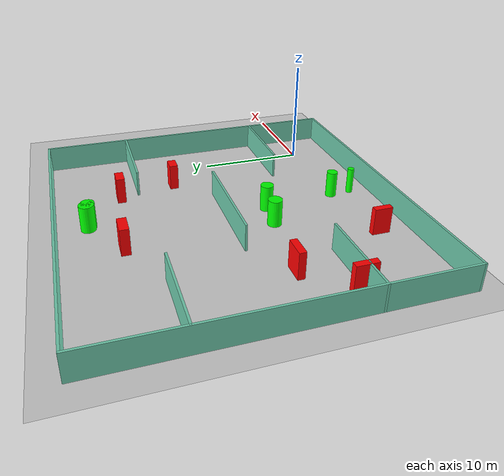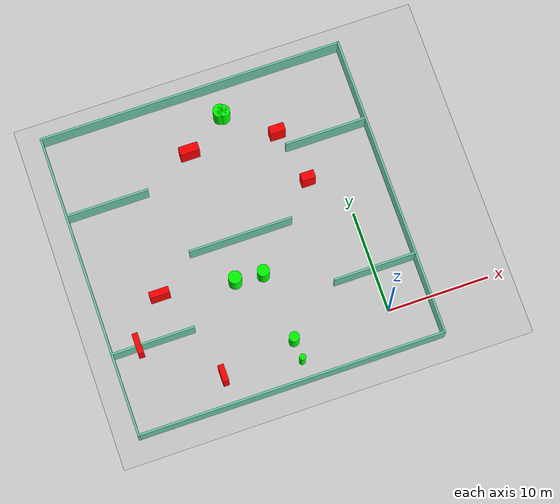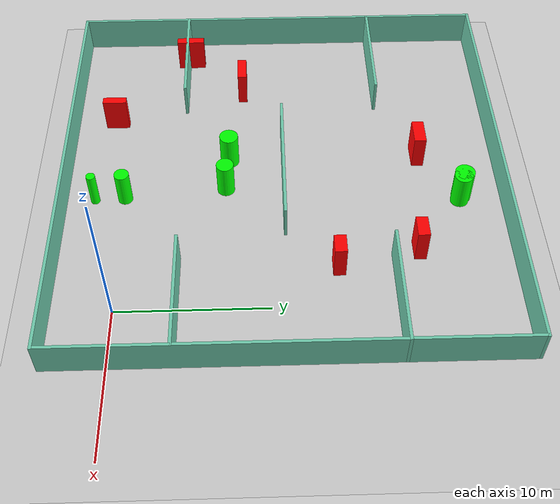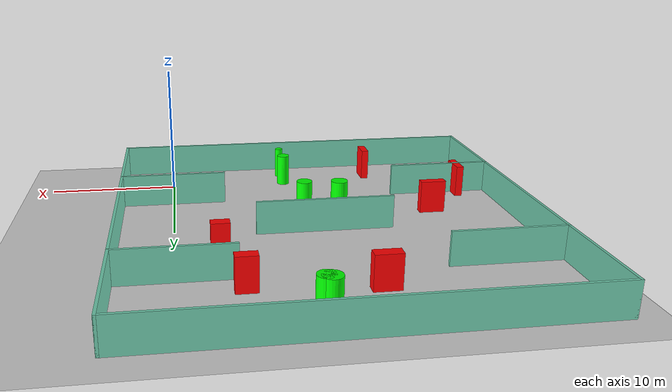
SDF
<sdf version="1.7">
 <world name="default">
  <light name="sun" type="directional">
   <pose>0 0 10 0 -0 0</pose>
   <diffuse>0.8 0.8 0.8 1</diffuse>
   <specular>0.2 0.2 0.2 1</specular>
   <attenuation>
    <range>1000</range>
    <constant>0.9</constant>
    <linear>0.01</linear>
    <quadratic>0.001</quadratic>
   </attenuation>
   <direction>-0.5 0.1 -0.9</direction>
   <spot><inner_angle>0</inner_angle><outer_angle>0</outer_angle><falloff>0</falloff></spot>
  </light>
  <model name="ground_plane">
   <static>1</static>
   <link name="link">
    <collision name="collision">
     <geometry><plane><normal>0 0 1</normal><size>100 100</size></plane></geometry>
     <surface>
      <contact><collide_bitmask>65535</collide_bitmask></contact>
      <friction><ode><mu>100</mu><mu2>50</mu2></ode></friction>
     </surface>
    </collision>
    <visual name="visual">
     <cast_shadows>0</cast_shadows>
     <geometry><plane><normal>0 0 1</normal><size>100 100</size></plane></geometry>
     <material>
      <script><uri>file://media/materials/scripts/gazebo.material</uri><name>Gazebo/Grey</name></script>
     </material>
    </visual>
   </link>
  </model>
  <gravity>0 0 -9.8</gravity>
  <magnetic_field>6e-06 2.3e-05 -4.2e-05</magnetic_field>
  <atmosphere type="adiabatic"/>
  <physics type="ode">
   <max_step_size>0.001</max_step_size>
   <real_time_factor>1</real_time_factor>
   <real_time_update_rate>1000</real_time_update_rate>
  </physics>
  <scene><ambient>0.4 0.4 0.4 1</ambient><background>0.7 0.7 0.7 1</background><shadows>1</shadows></scene>
  <spherical_coordinates>
   <surface_model>EARTH_WGS84</surface_model>
   <latitude_deg>0</latitude_deg>
   <longitude_deg>0</longitude_deg>
   <elevation>0</elevation>
   <heading_deg>0</heading_deg>
  </spherical_coordinates>
  <model name="my_base_walls">
   <link name="Wall_10">
    <collision name="Wall_10_Collision">
     <geometry><box><size>8.2 0.2 2.5</size></box></geometry>
     <pose>0 0 1.25 0 -0 0</pose>
    </collision>
    <visual name="Wall_10_Visual">
     <pose>0 0 1.25 0 -0 0</pose>
     <geometry><box><size>8.2 0.2 2.5</size></box></geometry>
     <material>
      <script><uri>file://media/materials/scripts/gazebo.material</uri><name>Gazebo/Grey</name></script>
      <ambient>0.435294 0.796078 0.67451 1</ambient>
     </material>
     <meta><layer>0</layer></meta>
    </visual>
    <pose>-11 -7 0 0 -0 0</pose>
   </link>
   <link name="Wall_12">
    <collision name="Wall_12_Collision">
     <geometry><box><size>8.2 0.2 2.5</size></box></geometry>
     <pose>0 0 1.25 0 -0 0</pose>
    </collision>
    <visual name="Wall_12_Visual">
     <pose>0 0 1.25 0 -0 0</pose>
     <geometry><box><size>8.2 0.2 2.5</size></box></geometry>
     <material>
      <script><uri>file://media/materials/scripts/gazebo.material</uri><name>Gazebo/Grey</name></script>
      <ambient>0.435294 0.796078 0.67451 1</ambient>
     </material>
     <meta><layer>0</layer></meta>
    </visual>
    <pose>-11 7 0 0 -0 0</pose>
   </link>
   <link name="Wall_14">
    <collision name="Wall_14_Collision">
     <geometry><box><size>8.2 0.2 2.5</size></box></geometry>
     <pose>0 0 1.25 0 -0 0</pose>
    </collision>
    <visual name="Wall_14_Visual">
     <pose>0 0 1.25 0 -0 0</pose>
     <geometry><box><size>8.2 0.2 2.5</size></box></geometry>
     <material>
      <script><uri>file://media/materials/scripts/gazebo.material</uri><name>Gazebo/Grey</name></script>
      <ambient>0.435294 0.796078 0.67451 1</ambient>
     </material>
     <meta><layer>0</layer></meta>
    </visual>
    <pose>11 7 0 0 -0 3.14159</pose>
   </link>
   <link name="Wall_16">
    <collision name="Wall_16_Collision">
     <geometry><box><size>10.2 0.2 2.5</size></box></geometry>
     <pose>0 0 1.25 0 -0 0</pose>
    </collision>
    <visual name="Wall_16_Visual">
     <pose>0 0 1.25 0 -0 0</pose>
     <geometry><box><size>10.2 0.2 2.5</size></box></geometry>
     <material>
      <script><uri>file://media/materials/scripts/gazebo.material</uri><name>Gazebo/Grey</name></script>
      <ambient>0.435294 0.796078 0.67451 1</ambient>
     </material>
     <meta><layer>0</layer></meta>
    </visual>
    <pose>0 0 0 0 -0 3.14159</pose>
   </link>
   <link name="Wall_2">
    <collision name="Wall_2_Collision">
     <geometry><box><size>30.2 0.2 2.5</size></box></geometry>
     <pose>0 0 1.25 0 -0 0</pose>
    </collision>
    <visual name="Wall_2_Visual">
     <pose>0 0 1.25 0 -0 0</pose>
     <geometry><box><size>30.2 0.2 2.5</size></box></geometry>
     <material>
      <script><uri>file://media/materials/scripts/gazebo.material</uri><name>Gazebo/Grey</name></script>
      <ambient>0.435294 0.796078 0.67451 1</ambient>
     </material>
     <meta><layer>0</layer></meta>
    </visual>
    <pose>0 -15 0 0 -0 3.14159</pose>
   </link>
   <link name="Wall_3">
    <collision name="Wall_3_Collision">
     <geometry><box><size>30.2 0.2 2.5</size></box></geometry>
     <pose>0 0 1.25 0 -0 0</pose>
    </collision>
    <visual name="Wall_3_Visual">
     <pose>0 0 1.25 0 -0 0</pose>
     <geometry><box><size>30.2 0.2 2.5</size></box></geometry>
     <material>
      <script><uri>file://media/materials/scripts/gazebo.material</uri><name>Gazebo/Grey</name></script>
      <ambient>0.435294 0.796078 0.67451 1</ambient>
     </material>
     <meta><layer>0</layer></meta>
    </visual>
    <pose>-15 0 0 0 -0 1.5708</pose>
   </link>
   <link name="Wall_4">
    <collision name="Wall_4_Collision">
     <geometry><box><size>30.2 0.2 2.5</size></box></geometry>
     <pose>0 0 1.25 0 -0 0</pose>
    </collision>
    <visual name="Wall_4_Visual">
     <pose>0 0 1.25 0 -0 0</pose>
     <geometry><box><size>30.2 0.2 2.5</size></box></geometry>
     <material>
      <script><uri>file://media/materials/scripts/gazebo.material</uri><name>Gazebo/Grey</name></script>
      <ambient>0.435294 0.796078 0.67451 1</ambient>
     </material>
     <meta><layer>0</layer></meta>
    </visual>
    <pose>0 15 0 0 -0 0</pose>
   </link>
   <link name="Wall_6">
    <collision name="Wall_6_Collision">
     <geometry><box><size>30.2 0.2 2.5</size></box></geometry>
     <pose>0 0 1.25 0 -0 0</pose>
    </collision>
    <visual name="Wall_6_Visual">
     <pose>0 0 1.25 0 -0 0</pose>
     <geometry><box><size>30.2 0.2 2.5</size></box></geometry>
     <material>
      <script><uri>file://media/materials/scripts/gazebo.material</uri><name>Gazebo/Grey</name></script>
      <ambient>0.435294 0.796078 0.67451 1</ambient>
     </material>
     <meta><layer>0</layer></meta>
    </visual>
    <pose>15 0 0 0 -0 1.5708</pose>
   </link>
   <link name="Wall_8">
    <collision name="Wall_8_Collision">
     <geometry><box><size>8.2 0.2 2.5</size></box></geometry>
     <pose>0 0 1.25 0 -0 0</pose>
    </collision>
    <visual name="Wall_8_Visual">
     <pose>0 0 1.25 0 -0 0</pose>
     <geometry><box><size>8.2 0.2 2.5</size></box></geometry>
     <material>
      <script><uri>file://media/materials/scripts/gazebo.material</uri><name>Gazebo/Grey</name></script>
      <ambient>0.435294 0.796078 0.67451 1</ambient>
     </material>
     <meta><layer>0</layer></meta>
    </visual>
    <pose>11 -7 0 0 -0 3.14159</pose>
   </link>
   <static>1</static>
   <pose>-11 11 0 0 -0 0</pose>
  </model>
  <model name="cylinder1">
   <static>1</static>
   <link name="link">
    <inertial>
     <mass>1</mass>
     <inertia><ixx>0.5</ixx><ixy>0</ixy><ixz>0</ixz><iyy>0.5</iyy><iyz>0</iyz><izz>1</izz></inertia>
    </inertial>
    <collision name="collision">
     <geometry><cylinder><radius>0.6174804611187071</radius><length>2.5</length></cylinder></geometry>
    </collision>
    <visual name="visual">
     <geometry><cylinder><radius>0.6174804611187071</radius><length>2.5</length></cylinder></geometry>
     <material>
      <ambient>0 1 0 1</ambient>
      <diffuse>0 1 0 1</diffuse>
      <specular>0.1 0.1 0.1 1</specular>
      <emissive>0 0 0 0</emissive>
     </material>
    </visual>
   </link>
   <pose>-8.645445016752799 23.051301100409255 1.25 0 0 0</pose>
  </model>
  <model name="cylinder2">
   <static>1</static>
   <link name="link">
    <inertial>
     <mass>1</mass>
     <inertia><ixx>0.5</ixx><ixy>0</ixy><ixz>0</ixz><iyy>0.5</iyy><iyz>0</iyz><izz>1</izz></inertia>
    </inertial>
    <collision name="collision">
     <geometry><cylinder><radius>0.6732594194952959</radius><length>2.5</length></cylinder></geometry>
    </collision>
    <visual name="visual">
     <geometry><cylinder><radius>0.6732594194952959</radius><length>2.5</length></cylinder></geometry>
     <material>
      <ambient>0 1 0 1</ambient>
      <diffuse>0 1 0 1</diffuse>
      <specular>0.1 0.1 0.1 1</specular>
      <emissive>0 0 0 0</emissive>
     </material>
    </visual>
   </link>
   <pose>-8.975420047514135 23.188230882262246 1.25 0 0 0</pose>
  </model>
  <model name="cylinder3">
   <static>1</static>
   <link name="link">
    <inertial>
     <mass>1</mass>
     <inertia><ixx>0.5</ixx><ixy>0</ixy><ixz>0</ixz><iyy>0.5</iyy><iyz>0</iyz><izz>1</izz></inertia>
    </inertial>
    <collision name="collision">
     <geometry><cylinder><radius>0.3101964794963561</radius><length>2.5</length></cylinder></geometry>
    </collision>
    <visual name="visual">
     <geometry><cylinder><radius>0.3101964794963561</radius><length>2.5</length></cylinder></geometry>
     <material>
      <ambient>0 1 0 1</ambient>
      <diffuse>0 1 0 1</diffuse>
      <specular>0.1 0.1 0.1 1</specular>
      <emissive>0 0 0 0</emissive>
     </material>
    </visual>
   </link>
   <pose>-9.306279889252172 -1.9783474325818626 1.25 0 0 0</pose>
  </model>
  <model name="cylinder4">
   <static>1</static>
   <link name="link">
    <inertial>
     <mass>1</mass>
     <inertia><ixx>0.5</ixx><ixy>0</ixy><ixz>0</ixz><iyy>0.5</iyy><iyz>0</iyz><izz>1</izz></inertia>
    </inertial>
    <collision name="collision">
     <geometry><cylinder><radius>0.4986407429054618</radius><length>2.5</length></cylinder></geometry>
    </collision>
    <visual name="visual">
     <geometry><cylinder><radius>0.4986407429054618</radius><length>2.5</length></cylinder></geometry>
     <material>
      <ambient>0 1 0 1</ambient>
      <diffuse>0 1 0 1</diffuse>
      <specular>0.1 0.1 0.1 1</specular>
      <emissive>0 0 0 0</emissive>
     </material>
    </visual>
   </link>
   <pose>-9.4200053777326 0.0745560158761358 1.25 0 0 0</pose>
  </model>
  <model name="cylinder5">
   <static>1</static>
   <link name="link">
    <inertial>
     <mass>1</mass>
     <inertia><ixx>0.5</ixx><ixy>0</ixy><ixz>0</ixz><iyy>0.5</iyy><iyz>0</iyz><izz>1</izz></inertia>
    </inertial>
    <collision name="collision">
     <geometry><cylinder><radius>0.5981732368231458</radius><length>2.5</length></cylinder></geometry>
    </collision>
    <visual name="visual">
     <geometry><cylinder><radius>0.5981732368231458</radius><length>2.5</length></cylinder></geometry>
     <material>
      <ambient>0 1 0 1</ambient>
      <diffuse>0 1 0 1</diffuse>
      <specular>0.1 0.1 0.1 1</specular>
      <emissive>0 0 0 0</emissive>
     </material>
    </visual>
   </link>
   <pose>-10.10031652988776 7.002103180281431 1.25 0 0 0</pose>
  </model>
  <model name="cylinder6">
   <static>1</static>
   <link name="link">
    <inertial>
     <mass>1</mass>
     <inertia><ixx>0.5</ixx><ixy>0</ixy><ixz>0</ixz><iyy>0.5</iyy><iyz>0</iyz><izz>1</izz></inertia>
    </inertial>
    <collision name="collision">
     <geometry><cylinder><radius>0.646517490752331</radius><length>2.5</length></cylinder></geometry>
    </collision>
    <visual name="visual">
     <geometry><cylinder><radius>0.646517490752331</radius><length>2.5</length></cylinder></geometry>
     <material>
      <ambient>0 1 0 1</ambient>
      <diffuse>0 1 0 1</diffuse>
      <specular>0.1 0.1 0.1 1</specular>
      <emissive>0 0 0 0</emissive>
     </material>
    </visual>
   </link>
   <pose>-12.82283204496512 7.241923110718329 1.25 0 0 0</pose>
  </model>
  <model name="box1">
   <static>1</static>
   <link name="link">
    <inertial>
     <mass>1</mass>
     <inertia><ixx>0.083</ixx><ixy>0</ixy><ixz>0</ixz><iyy>0.083</iyy><iyz>0</iyz><izz>0.083</izz></inertia>
    </inertial>
    <collision name="collision">
     <geometry><box><size>0.5671553065880097 2.0004394137217494 2.5</size></box></geometry>
    </collision>
    <visual name="visual">
     <geometry><box><size>0.5671553065880097 2.0004394137217494 2.5</size></box></geometry>
     <material>
      <ambient>1 0 0 1</ambient>
      <diffuse>1 0 0 1</diffuse>
      <specular>0.1 0.1 0.1 1</specular>
      <emissive>0 0 0 0</emissive>
     </material>
    </visual>
    <sensor name="my_contact" type="contact">
     <contact><collision>box_collision</collision><topic>__default_topic__</topic></contact>
    </sensor>
   </link>
   <pose>-23.388908390183072 4.219211122618363 1.25 0 0 0</pose>
  </model>
  <model name="box2">
   <static>1</static>
   <link name="link">
    <inertial>
     <mass>1</mass>
     <inertia><ixx>0.083</ixx><ixy>0</ixy><ixz>0</ixz><iyy>0.083</iyy><iyz>0</iyz><izz>0.083</izz></inertia>
    </inertial>
    <collision name="collision">
     <geometry><box><size>0.5672064510120187 1.65389147004848 2.5</size></box></geometry>
    </collision>
    <visual name="visual">
     <geometry><box><size>0.5672064510120187 1.65389147004848 2.5</size></box></geometry>
     <material>
      <ambient>1 0 0 1</ambient>
      <diffuse>1 0 0 1</diffuse>
      <specular>0.1 0.1 0.1 1</specular>
      <emissive>0 0 0 0</emissive>
     </material>
    </visual>
    <sensor name="my_contact" type="contact">
     <contact><collision>box_collision</collision><topic>__default_topic__</topic></contact>
    </sensor>
   </link>
   <pose>-16.75295803024348 -1.031875140670289 1.25 0 0 0</pose>
  </model>
  <model name="box3">
   <static>1</static>
   <link name="link">
    <inertial>
     <mass>1</mass>
     <inertia><ixx>0.083</ixx><ixy>0</ixy><ixz>0</ixz><iyy>0.083</iyy><iyz>0</iyz><izz>0.083</izz></inertia>
    </inertial>
    <collision name="collision">
     <geometry><box><size>1.504936219003547 0.789852400658035 2.5</size></box></geometry>
    </collision>
    <visual name="visual">
     <geometry><box><size>1.504936219003547 0.789852400658035 2.5</size></box></geometry>
     <material>
      <ambient>1 0 0 1</ambient>
      <diffuse>1 0 0 1</diffuse>
      <specular>0.1 0.1 0.1 1</specular>
      <emissive>0 0 0 0</emissive>
     </material>
    </visual>
    <sensor name="my_contact" type="contact">
     <contact><collision>box_collision</collision><topic>__default_topic__</topic></contact>
    </sensor>
   </link>
   <pose>-4.371115439494083 19.74378097331988 1.25 0 0 0</pose>
  </model>
  <model name="box4">
   <static>1</static>
   <link name="link">
    <inertial>
     <mass>1</mass>
     <inertia><ixx>0.083</ixx><ixy>0</ixy><ixz>0</ixz><iyy>0.083</iyy><iyz>0</iyz><izz>0.083</izz></inertia>
    </inertial>
    <collision name="collision">
     <geometry><box><size>1.33532835737637 0.8040807057530737 2.5</size></box></geometry>
    </collision>
    <visual name="visual">
     <geometry><box><size>1.33532835737637 0.8040807057530737 2.5</size></box></geometry>
     <material>
      <ambient>1 0 0 1</ambient>
      <diffuse>1 0 0 1</diffuse>
      <specular>0.1 0.1 0.1 1</specular>
      <emissive>0 0 0 0</emissive>
     </material>
    </visual>
    <sensor name="my_contact" type="contact">
     <contact><collision>box_collision</collision><topic>__default_topic__</topic></contact>
    </sensor>
   </link>
   <pose>-3.11464584674971 14.382627261934825 1.25 0 0 0</pose>
  </model>
  <model name="box5">
   <static>1</static>
   <link name="link">
    <inertial>
     <mass>1</mass>
     <inertia><ixx>0.083</ixx><ixy>0</ixy><ixz>0</ixz><iyy>0.083</iyy><iyz>0</iyz><izz>0.083</izz></inertia>
    </inertial>
    <collision name="collision">
     <geometry><box><size>1.8949294573765638 0.8251345880595815 2.5</size></box></geometry>
    </collision>
    <visual name="visual">
     <geometry><box><size>1.8949294573765638 0.8251345880595815 2.5</size></box></geometry>
     <material>
      <ambient>1 0 0 1</ambient>
      <diffuse>1 0 0 1</diffuse>
      <specular>0.1 0.1 0.1 1</specular>
      <emissive>0 0 0 0</emissive>
     </material>
    </visual>
    <sensor name="my_contact" type="contact">
     <contact><collision>box_collision</collision><topic>__default_topic__</topic></contact>
    </sensor>
   </link>
   <pose>-12.950118683063065 20.557672725136758 1.25 0 0 0</pose>
  </model>
  <model name="box6">
   <static>1</static>
   <link name="link">
    <inertial>
     <mass>1</mass>
     <inertia><ixx>0.083</ixx><ixy>0</ixy><ixz>0</ixz><iyy>0.083</iyy><iyz>0</iyz><izz>0.083</izz></inertia>
    </inertial>
    <collision name="collision">
     <geometry><box><size>1.932069177313787 0.636834822793108 2.5</size></box></geometry>
    </collision>
    <visual name="visual">
     <geometry><box><size>1.932069177313787 0.636834822793108 2.5</size></box></geometry>
     <material>
      <ambient>1 0 0 1</ambient>
      <diffuse>1 0 0 1</diffuse>
      <specular>0.1 0.1 0.1 1</specular>
      <emissive>0 0 0 0</emissive>
     </material>
    </visual>
    <sensor name="my_contact" type="contact">
     <contact><collision>box_collision</collision><topic>__default_topic__</topic></contact>
    </sensor>
   </link>
   <pose>-20.000783372573025 8.176157447689677 1.25 0 0 0</pose>
  </model>
 </world>
</sdf>
